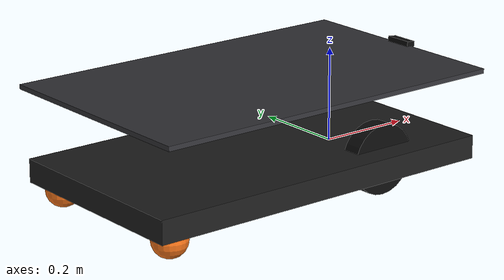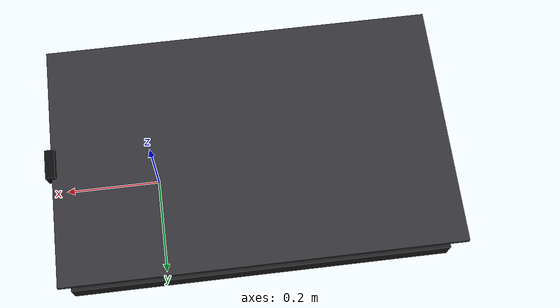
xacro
<?xml version="1.0"?>
<robot name="amr" xmlns:xacro="http://www.ros.org/wiki/xacro">

  <!-- Main dimensions -->
  <xacro:property name="chassis_x" value="0.80"/>
  <xacro:property name="chassis_y" value="0.45"/>
  <xacro:property name="wheel_radius" value="0.075"/>
  <xacro:property name="wheel_separation" value="0.30"/>
  <xacro:property name="axle_to_front" value="0.20"/>     <!-- drive axle is 60 cm from the rear edge -->
  <!-- Frame, caster and sensor mounting details -->
  <xacro:property name="chassis_z" value="0.05"/>        <!-- frame tube height -->
  <xacro:property name="wheel_width" value="0.04"/>
  <xacro:property name="caster_inset" value="0.05"/>     <!-- caster centre from the rear edge -->
  <xacro:property name="caster_y" value="0.18"/>
  <xacro:property name="deck_height" value="0.17"/>      <!-- top deck above base_link -->
  <xacro:property name="frame_x" value="${axle_to_front - chassis_x/2}"/>  <!-- frame centre, 0.2 m behind the axle -->
  <xacro:property name="lidar_height" value="0.10"/>     <!-- scan plane above base_link: clears the tyre tops -->

  <material name="frame"><color rgba="0.12 0.12 0.12 1"/></material>
  <material name="deck"><color rgba="0.2 0.2 0.22 1"/></material>
  <material name="rubber"><color rgba="0.05 0.05 0.05 1"/></material>
  <material name="orange"><color rgba="0.95 0.45 0.1 1"/></material>
  <material name="lidar"><color rgba="0.15 0.15 0.15 1"/></material>

  <xacro:macro name="box_inertia" params="m x y z">
    <inertial>
      <mass value="${m}"/>
      <inertia ixx="${m*(y*y+z*z)/12}" ixy="0" ixz="0"
               iyy="${m*(x*x+z*z)/12}" iyz="0" izz="${m*(x*x+y*y)/12}"/>
    </inertial>
  </xacro:macro>

  <!-- base_link: midpoint of the drive axle, one wheel radius above the floor -->
  <link name="base_link">
    <visual>
      <origin xyz="${frame_x} 0 0"/>
      <geometry><box size="${chassis_x} ${chassis_y} ${chassis_z}"/></geometry>
      <material name="frame"/>
    </visual>
    <collision>
      <origin xyz="${frame_x} 0 0"/>
      <geometry><box size="${chassis_x} ${chassis_y} ${chassis_z}"/></geometry>
    </collision>
    <inertial>
      <origin xyz="${frame_x} 0 0"/>
      <mass value="8.0"/>
      <inertia ixx="${8.0*(chassis_y*chassis_y+chassis_z*chassis_z)/12}" ixy="0" ixz="0"
               iyy="${8.0*(chassis_x*chassis_x+chassis_z*chassis_z)/12}" iyz="0"
               izz="${8.0*(chassis_x*chassis_x+chassis_y*chassis_y)/12}"/>
    </inertial>
  </link>

  <link name="base_footprint"/>
  <joint name="base_footprint_joint" type="fixed">
    <parent link="base_link"/>
    <child link="base_footprint"/>
    <origin xyz="0 0 ${-wheel_radius}"/>
  </joint>

  <link name="deck">
    <visual>
      <geometry><box size="${chassis_x} ${chassis_y + 0.05} 0.01"/></geometry>
      <material name="deck"/>
    </visual>
  </link>
  <joint name="deck_joint" type="fixed">
    <parent link="base_link"/>
    <child link="deck"/>
    <origin xyz="${frame_x} 0 ${deck_height}"/>
  </joint>

  <xacro:macro name="wheel" params="side y">
    <link name="${side}_wheel">
      <visual>
        <origin rpy="${pi/2} 0 0"/>
        <geometry><cylinder radius="${wheel_radius}" length="${wheel_width}"/></geometry>
        <material name="rubber"/>
      </visual>
      <collision>
        <origin rpy="${pi/2} 0 0"/>
        <geometry><cylinder radius="${wheel_radius}" length="${wheel_width}"/></geometry>
      </collision>
      <xacro:box_inertia m="0.5" x="${2*wheel_radius}" y="${wheel_width}" z="${2*wheel_radius}"/>
    </link>
    <joint name="${side}_wheel_joint" type="continuous">
      <parent link="base_link"/>
      <child link="${side}_wheel"/>
      <origin xyz="0 ${y} 0"/>
      <axis xyz="0 1 0"/>
    </joint>
  </xacro:macro>

  <xacro:wheel side="left" y="${wheel_separation/2}"/>
  <xacro:wheel side="right" y="${-wheel_separation/2}"/>

  <!-- Swivel casters, modelled as spheres touching the floor -->
  <xacro:macro name="caster" params="name x y">
    <link name="${name}_caster">
      <visual>
        <geometry><sphere radius="${wheel_radius/2}"/></geometry>
        <material name="orange"/>
      </visual>
      <collision>
        <geometry><sphere radius="${wheel_radius/2}"/></geometry>
      </collision>
    </link>
    <joint name="${name}_caster_joint" type="fixed">
      <parent link="base_link"/>
      <child link="${name}_caster"/>
      <origin xyz="${x} ${y} ${-wheel_radius/2}"/>
    </joint>
  </xacro:macro>

  <xacro:caster name="rear_left" x="${axle_to_front - chassis_x + caster_inset}" y="${caster_y}"/>
  <xacro:caster name="rear_right" x="${axle_to_front - chassis_x + caster_inset}" y="${-caster_y}"/>

  <!-- RPLidar A1 in the exact centre of the frame -->
  <link name="lidar_link">
    <visual>
      <geometry><cylinder radius="0.035" length="0.04"/></geometry>
      <material name="lidar"/>
    </visual>
  </link>
  <joint name="lidar_joint" type="fixed">
    <parent link="base_link"/>
    <child link="lidar_link"/>
    <origin xyz="${frame_x} 0 ${lidar_height}"/>
  </joint>

  <!-- Forward camera on the front edge of the top deck, tilted down ~7° to see stairs and floor edges -->
  <link name="camera_link">
    <visual>
      <geometry><box size="0.02 0.06 0.03"/></geometry>
      <material name="rubber"/>
    </visual>
  </link>
  <joint name="camera_joint" type="fixed">
    <parent link="base_link"/>
    <child link="camera_link"/>
    <origin xyz="${axle_to_front} 0 ${deck_height}" rpy="0 0.12 0"/>
  </joint>

  <!-- Optical frame (z forward, x right) for image consumers -->
  <link name="camera_optical_frame"/>
  <joint name="camera_optical_joint" type="fixed">
    <parent link="camera_link"/>
    <child link="camera_optical_frame"/>
    <origin rpy="${-pi/2} 0 ${-pi/2}"/>
  </joint>

</robot>
